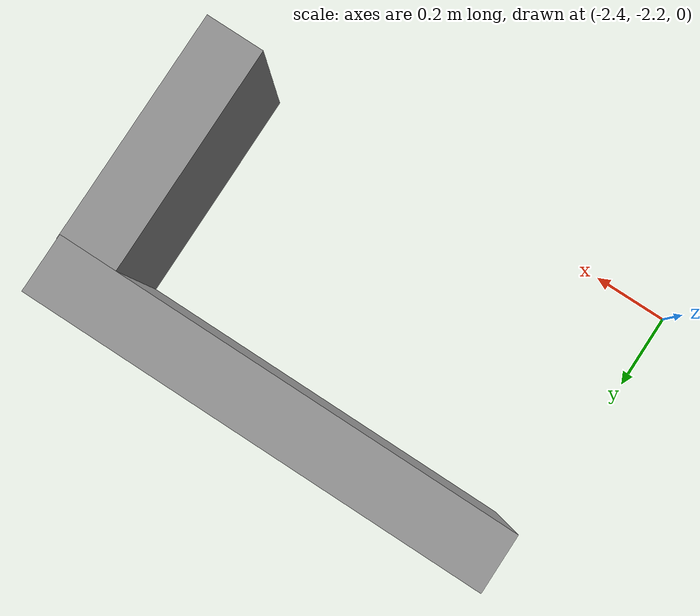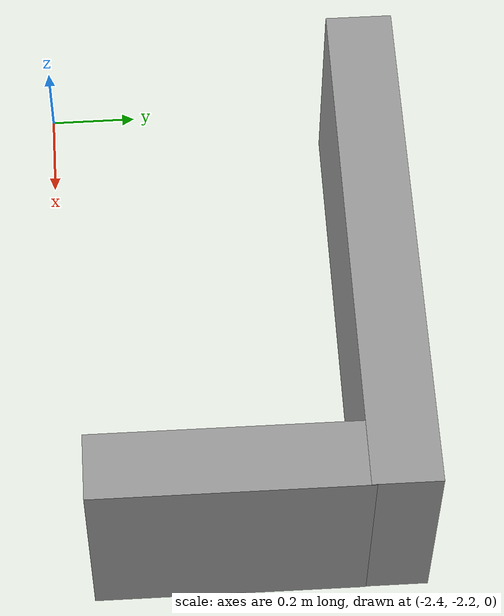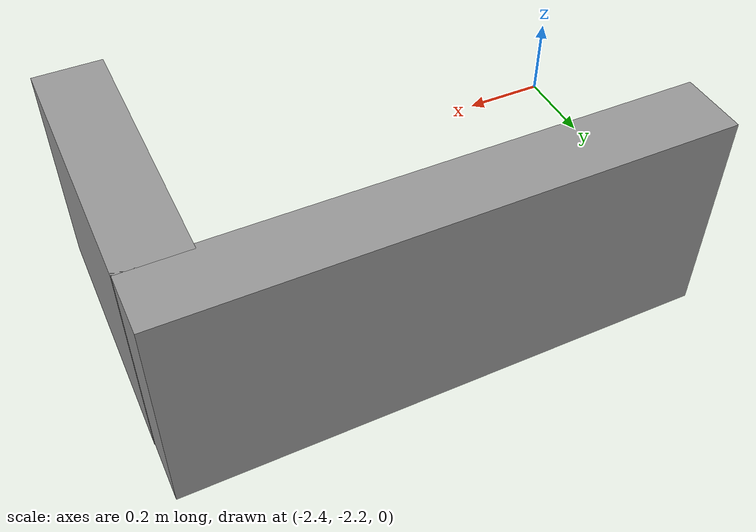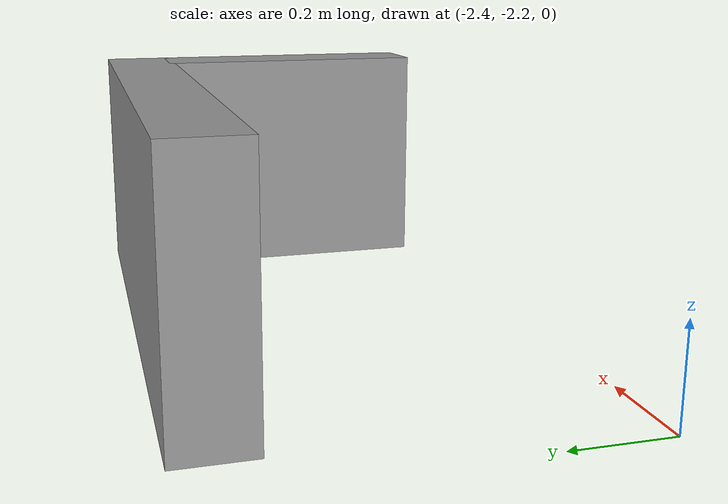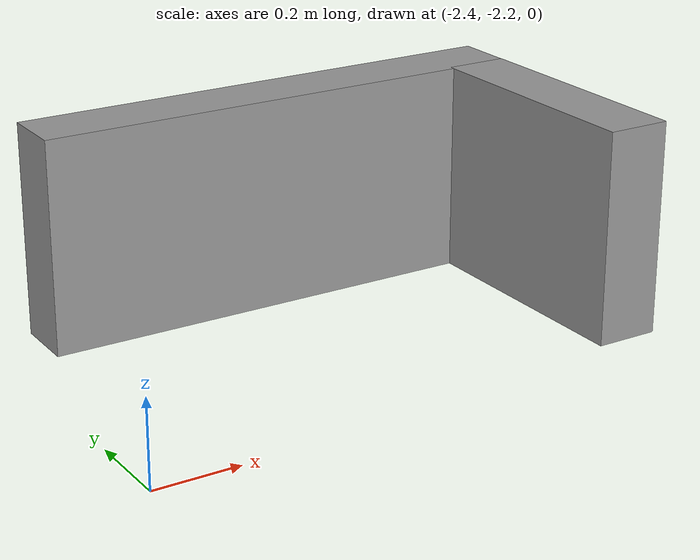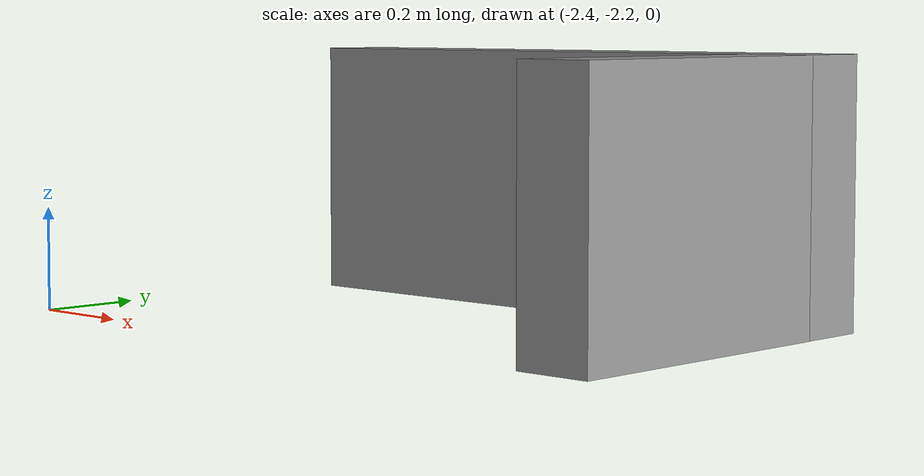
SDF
<?xml version='1.0'?>
<sdf version='1.7'>
  <model name='firstworld'>
    <pose>-1.1505 -1.06629 0 0 -0 0</pose>
    <link name='Wall_3'>
      <collision name='Wall_3_Collision'>
        <geometry>
          <box>
            <size>0.6 0.15 0.5</size>
          </box>
        </geometry>
        <pose>0 0 0.25 0 -0 0</pose>
      </collision>
      <visual name='Wall_3_Visual'>
        <pose>0 0 0.25 0 -0 0</pose>
        <geometry>
          <box>
            <size>0.6 0.15 0.5</size>
          </box>
        </geometry>
        <material>
          <script>
            <uri>file://media/materials/scripts/gazebo.material</uri>
            <name>Gazebo/Grey</name>
          </script>
          <ambient>1 1 1 1</ambient>
        </material>
        <meta>
          <layer>0</layer>
        </meta>
      </visual>
      <pose>-0.024402 -0.766288 0 0 -0 -1.5708</pose>
    </link>
    <link name='Wall_5'>
      <collision name='Wall_5_Collision'>
        <geometry>
          <box>
            <size>1.2 0.15 0.5</size>
          </box>
        </geometry>
        <pose>0 0 0.25 0 -0 0</pose>
      </collision>
      <visual name='Wall_5_Visual'>
        <pose>0 0 0.25 0 -0 0</pose>
        <geometry>
          <box>
            <size>1.2 0.15 0.5</size>
          </box>
        </geometry>
        <material>
          <script>
            <uri>file://media/materials/scripts/gazebo.material</uri>
            <name>Gazebo/Grey</name>
          </script>
          <ambient>1 1 1 1</ambient>
        </material>
        <meta>
          <layer>0</layer>
        </meta>
      </visual>
      <pose>-0.5505 -0.403712 0 0 -0 0</pose>
    </link>
    <static>1</static>
  </model>
</sdf>
